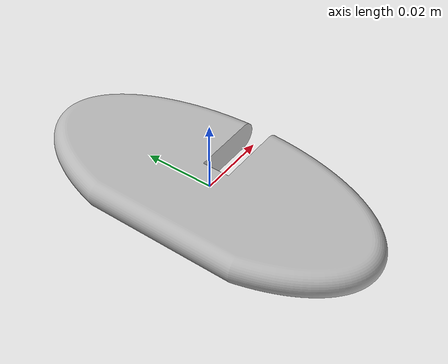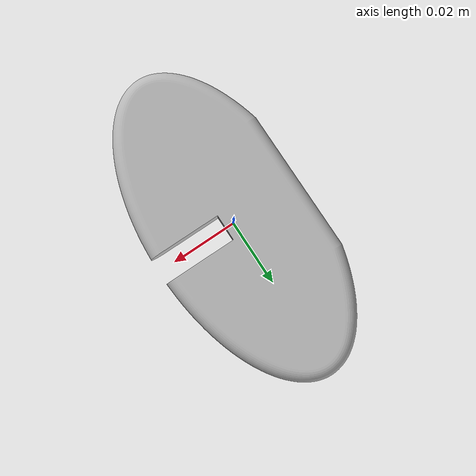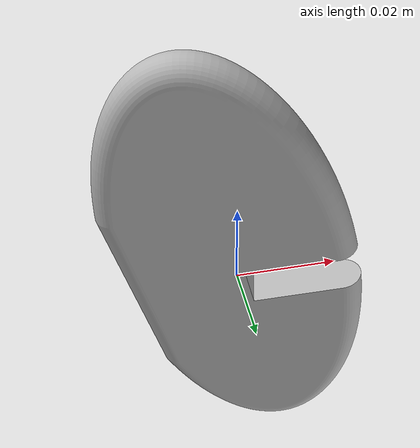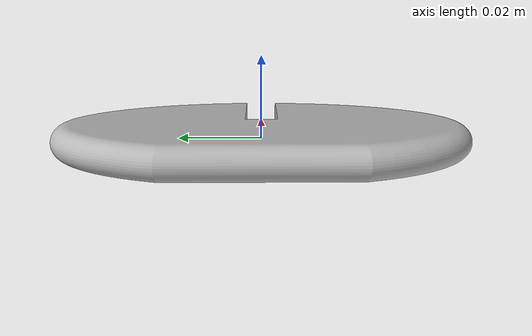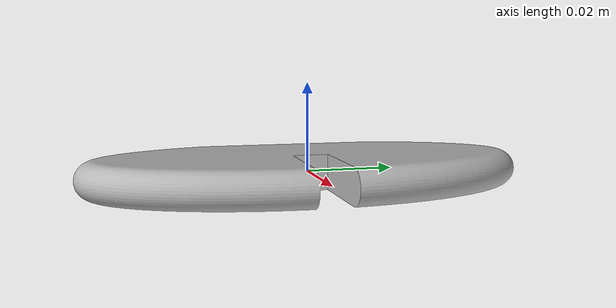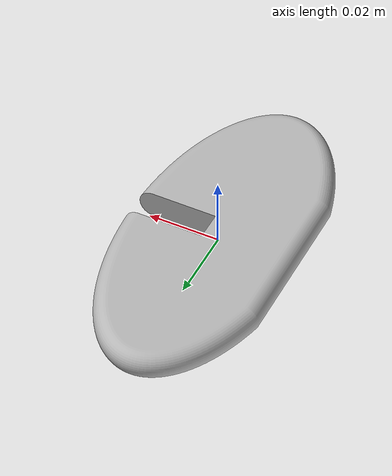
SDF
<?xml version="1.0" ?>
<sdf version="1.6">
  <model name="8)Vertical Tail">
    <static>true</static>
    <link name="link">
      <collision name="collision">
        <geometry>
          <mesh>
            <scale>0.001 0.001 0.001</scale>
            <uri>model://8)Vertical Tail/8)Vertical Tail.stl</uri>
          </mesh>
        </geometry>
      </collision>
      <visual name="visual">
        <geometry>
          <mesh>
            <scale>0.001 0.001 0.001</scale>
            <uri>model://8)Vertical Tail/8)Vertical Tail.dae</uri>
          </mesh>
        </geometry>
      </visual>
    </link>
  </model>
</sdf>
